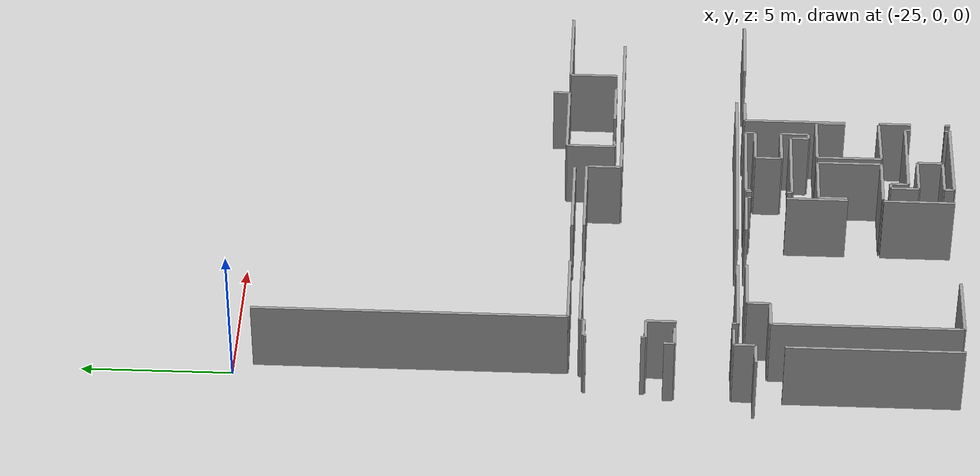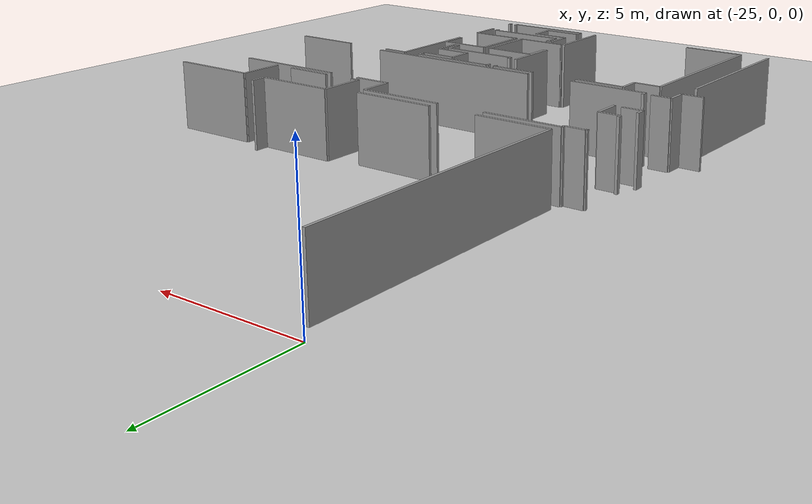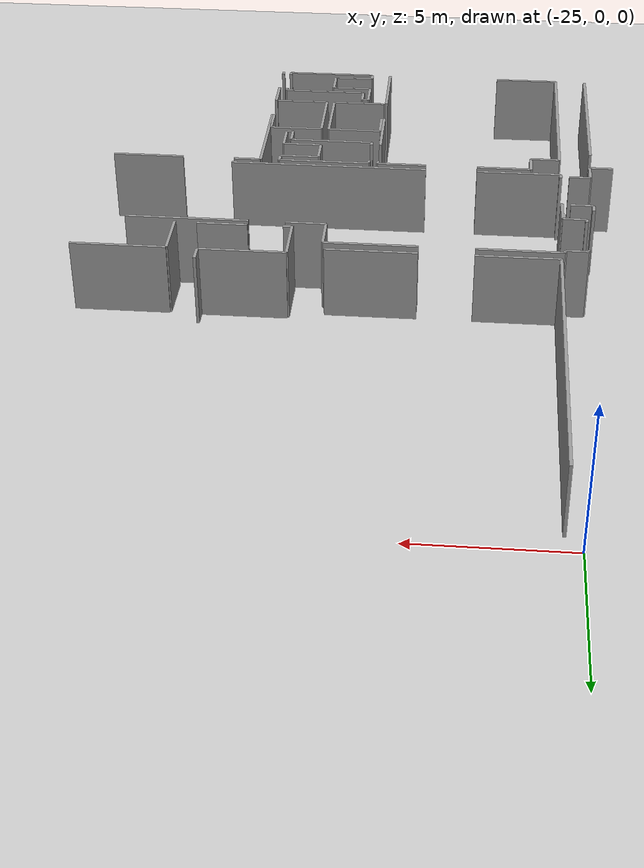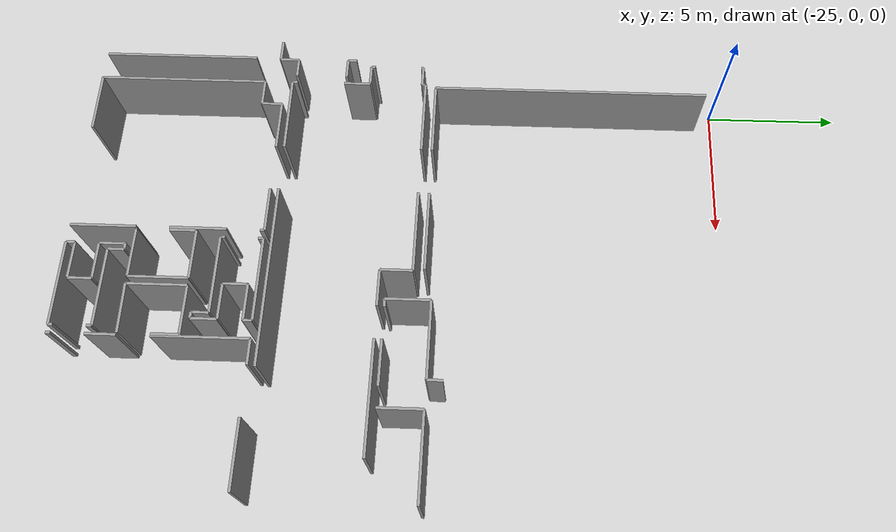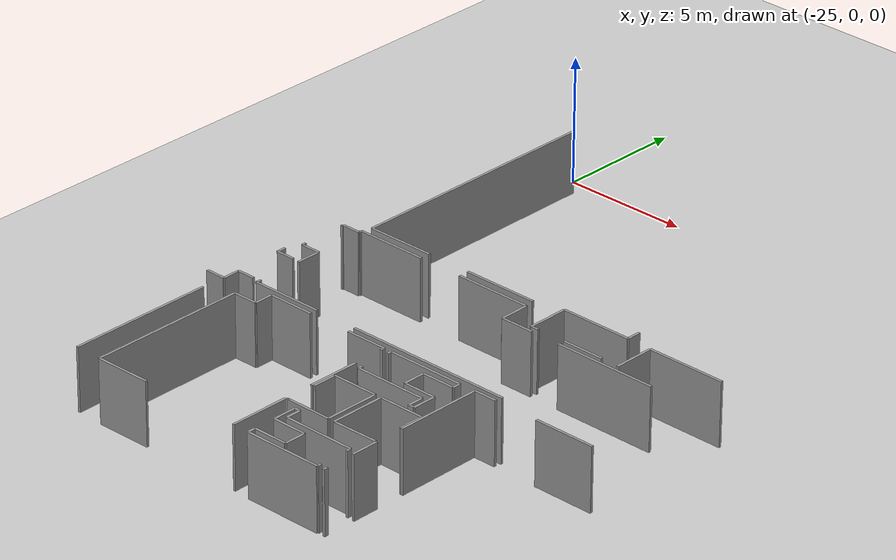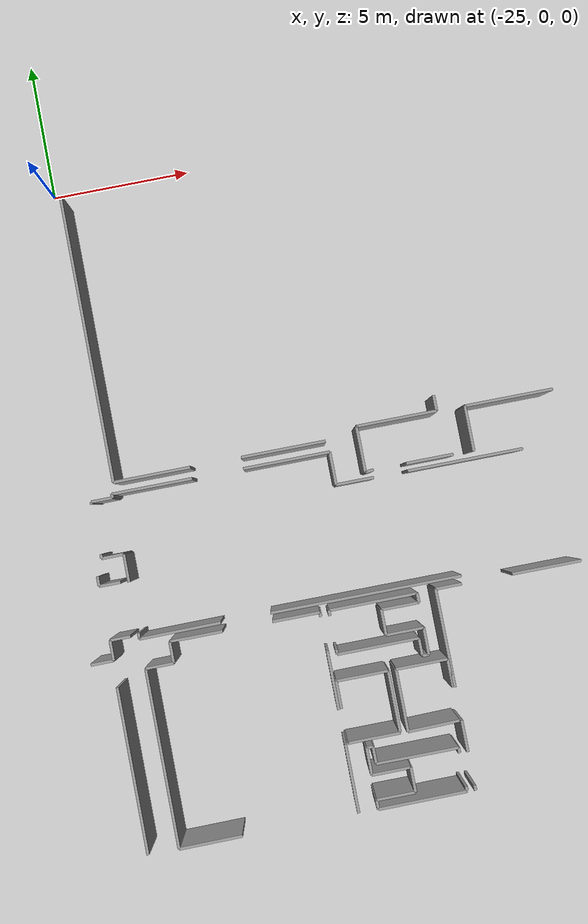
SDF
<sdf version="1.6">
 <world name="default">
  <model name="ground_plane">
   <static>1</static>
   <link name="link">
    <collision name="collision">
     <geometry><plane><normal>0 0 1</normal><size>100 100</size></plane></geometry>
     <surface><friction><ode><mu>100</mu><mu2>50</mu2></ode></friction></surface>
    </collision>
    <visual name="visual">
     <cast_shadows>0</cast_shadows>
     <geometry><plane><normal>0 0 1</normal><size>100 100</size></plane></geometry>
     <material>
      <script><uri>file://media/materials/scripts/gazebo.material</uri><name>Gazebo/Grey</name></script>
     </material>
    </visual>
   </link>
  </model>
  <model name="50057022">
   <static>1</static>
   <link name="Wall_275">
    <collision name="Wall_275_Collision">
     <geometry><box><size>0.340661095438 0.1 2.5</size></box></geometry>
     <pose>0.170330547719 0 1.25 0 0 0</pose>
    </collision>
    <visual name="Wall_275_Visual">
     <pose>0.170330547719 0 1.25 0 0 0</pose>
     <geometry><box><size>0.340661095438 0.1 2.5</size></box></geometry>
     <material>
      <script><uri>file://media/materials/scripts/gazebo.material</uri><name>Gazebo/Grey</name></script>
      <ambient>1 1 1 1</ambient>
     </material>
    </visual>
    <pose>30.9262737405 -37.9091925267 0 0 0 -1.57079632679</pose>
   </link>
   <link name="Wall_276">
    <collision name="Wall_276_Collision">
     <geometry><box><size>0.75368732685 0.1 2.5</size></box></geometry>
     <pose>0.376843663425 0 1.25 0 0 0</pose>
    </collision>
    <visual name="Wall_276_Visual">
     <pose>0.376843663425 0 1.25 0 0 0</pose>
     <geometry><box><size>0.75368732685 0.1 2.5</size></box></geometry>
     <material>
      <script><uri>file://media/materials/scripts/gazebo.material</uri><name>Gazebo/Grey</name></script>
      <ambient>1 1 1 1</ambient>
     </material>
    </visual>
    <pose>30.9262737405 -38.2498536222 0 0 0 0.0</pose>
   </link>
   <link name="Wall_277">
    <collision name="Wall_277_Collision">
     <geometry><box><size>0.723144423576 0.1 2.5</size></box></geometry>
     <pose>0.361572211788 0 1.25 0 0 0</pose>
    </collision>
    <visual name="Wall_277_Visual">
     <pose>0.361572211788 0 1.25 0 0 0</pose>
     <geometry><box><size>0.723144423576 0.1 2.5</size></box></geometry>
     <material>
      <script><uri>file://media/materials/scripts/gazebo.material</uri><name>Gazebo/Grey</name></script>
      <ambient>1 1 1 1</ambient>
     </material>
    </visual>
    <pose>31.6799610673 -40.1591019119 0 0 0 3.14159265359</pose>
   </link>
   <link name="Wall_278">
    <collision name="Wall_278_Collision">
     <geometry><box><size>0.703880849726 0.1 2.5</size></box></geometry>
     <pose>0.351940424863 0 1.25 0 0 0</pose>
    </collision>
    <visual name="Wall_278_Visual">
     <pose>0.351940424863 0 1.25 0 0 0</pose>
     <geometry><box><size>0.703880849726 0.1 2.5</size></box></geometry>
     <material>
      <script><uri>file://media/materials/scripts/gazebo.material</uri><name>Gazebo/Grey</name></script>
      <ambient>1 1 1 1</ambient>
     </material>
    </visual>
    <pose>30.9568166437 -40.1591019119 0 0 0 -1.57079632679</pose>
   </link>
   <link name="Wall_279">
    <collision name="Wall_279_Collision">
     <geometry><box><size>0.804507676281 0.1 2.5</size></box></geometry>
     <pose>0.40225383814 0 1.25 0 0 0</pose>
    </collision>
    <visual name="Wall_279_Visual">
     <pose>0.40225383814 0 1.25 0 0 0</pose>
     <geometry><box><size>0.804507676281 0.1 2.5</size></box></geometry>
     <material>
      <script><uri>file://media/materials/scripts/gazebo.material</uri><name>Gazebo/Grey</name></script>
      <ambient>1 1 1 1</ambient>
     </material>
    </visual>
    <pose>30.9568166437 -40.8629827616 0 0 0 3.14159265359</pose>
   </link>
   <link name="Wall_282">
    <collision name="Wall_282_Collision">
     <geometry><box><size>5.79922286688 0.1 2.5</size></box></geometry>
     <pose>2.89961143344 0 1.25 0 0 0</pose>
    </collision>
    <visual name="Wall_282_Visual">
     <pose>2.89961143344 0 1.25 0 0 0</pose>
     <geometry><box><size>5.79922286688 0.1 2.5</size></box></geometry>
     <material>
      <script><uri>file://media/materials/scripts/gazebo.material</uri><name>Gazebo/Grey</name></script>
      <ambient>1 1 1 1</ambient>
     </material>
    </visual>
    <pose>30.9065032305 -41.8015750506 0 0 0 -1.57079632679</pose>
   </link>
   <link name="Wall_309">
    <collision name="Wall_309_Collision">
     <geometry><box><size>6.2560990756 0.1 2.5</size></box></geometry>
     <pose>3.1280495378 0 1.25 0 0 0</pose>
    </collision>
    <visual name="Wall_309_Visual">
     <pose>3.1280495378 0 1.25 0 0 0</pose>
     <geometry><box><size>6.2560990756 0.1 2.5</size></box></geometry>
     <material>
      <script><uri>file://media/materials/scripts/gazebo.material</uri><name>Gazebo/Grey</name></script>
      <ambient>1 1 1 1</ambient>
     </material>
    </visual>
    <pose>31.9922337381 -47.6037128004 0 0 0 1.57079632679</pose>
   </link>
   <link name="Wall_310">
    <collision name="Wall_310_Collision">
     <geometry><box><size>0.989666106502 0.1 2.5</size></box></geometry>
     <pose>0.494833053251 0 1.25 0 0 0</pose>
    </collision>
    <visual name="Wall_310_Visual">
     <pose>0.494833053251 0 1.25 0 0 0</pose>
     <geometry><box><size>0.989666106502 0.1 2.5</size></box></geometry>
     <material>
      <script><uri>file://media/materials/scripts/gazebo.material</uri><name>Gazebo/Grey</name></script>
      <ambient>1 1 1 1</ambient>
     </material>
    </visual>
    <pose>31.9922337381 -41.3476137248 0 0 0 0.0</pose>
   </link>
   <link name="Wall_311">
    <collision name="Wall_311_Collision">
     <geometry><box><size>0.75786955012 0.1 2.5</size></box></geometry>
     <pose>0.37893477506 0 1.25 0 0 0</pose>
    </collision>
    <visual name="Wall_311_Visual">
     <pose>0.37893477506 0 1.25 0 0 0</pose>
     <geometry><box><size>0.75786955012 0.1 2.5</size></box></geometry>
     <material>
      <script><uri>file://media/materials/scripts/gazebo.material</uri><name>Gazebo/Grey</name></script>
      <ambient>1 1 1 1</ambient>
     </material>
    </visual>
    <pose>32.9818998446 -41.3476137248 0 0 0 1.57079632679</pose>
   </link>
   <link name="Wall_312">
    <collision name="Wall_312_Collision">
     <geometry><box><size>1.86552504645 0.1 2.5</size></box></geometry>
     <pose>0.932762523224 0 1.25 0 0 0</pose>
    </collision>
    <visual name="Wall_312_Visual">
     <pose>0.932762523224 0 1.25 0 0 0</pose>
     <geometry><box><size>1.86552504645 0.1 2.5</size></box></geometry>
     <material>
      <script><uri>file://media/materials/scripts/gazebo.material</uri><name>Gazebo/Grey</name></script>
      <ambient>1 1 1 1</ambient>
     </material>
    </visual>
    <pose>32.9818998446 -40.5897441747 0 0 0 0.0</pose>
   </link>
   <link name="Wall_313">
    <collision name="Wall_313_Collision">
     <geometry><box><size>1.67605765892 0.1 2.5</size></box></geometry>
     <pose>0.838028829459 0 1.25 0 0 0</pose>
    </collision>
    <visual name="Wall_313_Visual">
     <pose>0.838028829459 0 1.25 0 0 0</pose>
     <geometry><box><size>1.67605765892 0.1 2.5</size></box></geometry>
     <material>
      <script><uri>file://media/materials/scripts/gazebo.material</uri><name>Gazebo/Grey</name></script>
      <ambient>1 1 1 1</ambient>
     </material>
    </visual>
    <pose>36.6109290365 -40.5897441747 0 0 0 0.0</pose>
   </link>
   <link name="Wall_314">
    <collision name="Wall_314_Collision">
     <geometry><box><size>0.160318558679 0.1 2.5</size></box></geometry>
     <pose>0.0801592793396 0 1.25 0 0 0</pose>
    </collision>
    <visual name="Wall_314_Visual">
     <pose>0.0801592793396 0 1.25 0 0 0</pose>
     <geometry><box><size>0.160318558679 0.1 2.5</size></box></geometry>
     <material>
      <script><uri>file://media/materials/scripts/gazebo.material</uri><name>Gazebo/Grey</name></script>
      <ambient>1 1 1 1</ambient>
     </material>
    </visual>
    <pose>38.2869866955 -40.5897441747 0 0 0 -1.57079632679</pose>
   </link>
   <link name="Wall_315">
    <collision name="Wall_315_Collision">
     <geometry><box><size>2.05790731686 0.1 2.5</size></box></geometry>
     <pose>1.02895365843 0 1.25 0 0 0</pose>
    </collision>
    <visual name="Wall_315_Visual">
     <pose>1.02895365843 0 1.25 0 0 0</pose>
     <geometry><box><size>2.05790731686 0.1 2.5</size></box></geometry>
     <material>
      <script><uri>file://media/materials/scripts/gazebo.material</uri><name>Gazebo/Grey</name></script>
      <ambient>1 1 1 1</ambient>
     </material>
    </visual>
    <pose>38.2869866955 -41.9456716524 0 0 0 -1.57079632679</pose>
   </link>
   <link name="Wall_316">
    <collision name="Wall_316_Collision">
     <geometry><box><size>2.37930483845 0.1 2.5</size></box></geometry>
     <pose>1.18965241923 0 1.25 0 0 0</pose>
    </collision>
    <visual name="Wall_316_Visual">
     <pose>1.18965241923 0 1.25 0 0 0</pose>
     <geometry><box><size>2.37930483845 0.1 2.5</size></box></geometry>
     <material>
      <script><uri>file://media/materials/scripts/gazebo.material</uri><name>Gazebo/Grey</name></script>
      <ambient>1 1 1 1</ambient>
     </material>
    </visual>
    <pose>38.2869866955 -45.2057780583 0 0 0 -1.57079632679</pose>
   </link>
   <link name="Wall_317">
    <collision name="Wall_317_Collision">
     <geometry><box><size>2.22451385584 0.1 2.5</size></box></geometry>
     <pose>1.11225692792 0 1.25 0 0 0</pose>
    </collision>
    <visual name="Wall_317_Visual">
     <pose>1.11225692792 0 1.25 0 0 0</pose>
     <geometry><box><size>2.22451385584 0.1 2.5</size></box></geometry>
     <material>
      <script><uri>file://media/materials/scripts/gazebo.material</uri><name>Gazebo/Grey</name></script>
      <ambient>1 1 1 1</ambient>
     </material>
    </visual>
    <pose>34.2166695815 -47.5850828967 0 0 0 -3.13321773545</pose>
   </link>
   <link name="Wall_318">
    <collision name="Wall_318_Collision">
     <geometry><box><size>0.172485026373 0.1 2.5</size></box></geometry>
     <pose>0.0862425131867 0 1.25 0 0 0</pose>
    </collision>
    <visual name="Wall_318_Visual">
     <pose>0.0862425131867 0 1.25 0 0 0</pose>
     <geometry><box><size>0.172485026373 0.1 2.5</size></box></geometry>
     <material>
      <script><uri>file://media/materials/scripts/gazebo.material</uri><name>Gazebo/Grey</name></script>
      <ambient>1 1 1 1</ambient>
     </material>
    </visual>
    <pose>42.3879734467 -47.5937008114 0 0 0 1.57079632679</pose>
   </link>
   <link name="Wall_319">
    <collision name="Wall_319_Collision">
     <geometry><box><size>1.09003946498 0.1 2.5</size></box></geometry>
     <pose>0.54501973249 0 1.25 0 0 0</pose>
    </collision>
    <visual name="Wall_319_Visual">
     <pose>0.54501973249 0 1.25 0 0 0</pose>
     <geometry><box><size>1.09003946498 0.1 2.5</size></box></geometry>
     <material>
      <script><uri>file://media/materials/scripts/gazebo.material</uri><name>Gazebo/Grey</name></script>
      <ambient>1 1 1 1</ambient>
     </material>
    </visual>
    <pose>42.3879734467 -46.2579240458 0 0 0 1.57079632679</pose>
   </link>
   <link name="Wall_320">
    <collision name="Wall_320_Collision">
     <geometry><box><size>3.44019547458 0.1 2.5</size></box></geometry>
     <pose>1.72009773729 0 1.25 0 0 0</pose>
    </collision>
    <visual name="Wall_320_Visual">
     <pose>1.72009773729 0 1.25 0 0 0</pose>
     <geometry><box><size>3.44019547458 0.1 2.5</size></box></geometry>
     <material>
      <script><uri>file://media/materials/scripts/gazebo.material</uri><name>Gazebo/Grey</name></script>
      <ambient>1 1 1 1</ambient>
     </material>
    </visual>
    <pose>42.3879734467 -44.0021848948 0 0 0 1.57079632679</pose>
   </link>
   <link name="Wall_321">
    <collision name="Wall_321_Collision">
     <geometry><box><size>0.930734778608 0.1 2.5</size></box></geometry>
     <pose>0.465367389304 0 1.25 0 0 0</pose>
    </collision>
    <visual name="Wall_321_Visual">
     <pose>0.465367389304 0 1.25 0 0 0</pose>
     <geometry><box><size>0.930734778608 0.1 2.5</size></box></geometry>
     <material>
      <script><uri>file://media/materials/scripts/gazebo.material</uri><name>Gazebo/Grey</name></script>
      <ambient>1 1 1 1</ambient>
     </material>
    </visual>
    <pose>42.3879734467 -40.5619894202 0 0 0 0.0</pose>
   </link>
   <link name="Wall_322">
    <collision name="Wall_322_Collision">
     <geometry><box><size>2.45319078289 0.1 2.5</size></box></geometry>
     <pose>1.22659539144 0 1.25 0 0 0</pose>
    </collision>
    <visual name="Wall_322_Visual">
     <pose>1.22659539144 0 1.25 0 0 0</pose>
     <geometry><box><size>2.45319078289 0.1 2.5</size></box></geometry>
     <material>
      <script><uri>file://media/materials/scripts/gazebo.material</uri><name>Gazebo/Grey</name></script>
      <ambient>1 1 1 1</ambient>
     </material>
    </visual>
    <pose>45.1095869231 -40.5619894202 0 0 0 0.0</pose>
   </link>
   <link name="Wall_327">
    <collision name="Wall_327_Collision">
     <geometry><box><size>0.164374047911 0.1 2.5</size></box></geometry>
     <pose>0.0821870239553 0 1.25 0 0 0</pose>
    </collision>
    <visual name="Wall_327_Visual">
     <pose>0.0821870239553 0 1.25 0 0 0</pose>
     <geometry><box><size>0.164374047911 0.1 2.5</size></box></geometry>
     <material>
      <script><uri>file://media/materials/scripts/gazebo.material</uri><name>Gazebo/Grey</name></script>
      <ambient>1 1 1 1</ambient>
     </material>
    </visual>
    <pose>38.6069901426 -42.1251270509 0 0 0 1.57079632679</pose>
   </link>
   <link name="Wall_328">
    <collision name="Wall_328_Collision">
     <geometry><box><size>0.189087185414 0.1 2.5</size></box></geometry>
     <pose>0.0945435927072 0 1.25 0 0 0</pose>
    </collision>
    <visual name="Wall_328_Visual">
     <pose>0.0945435927072 0 1.25 0 0 0</pose>
     <geometry><box><size>0.189087185414 0.1 2.5</size></box></geometry>
     <material>
      <script><uri>file://media/materials/scripts/gazebo.material</uri><name>Gazebo/Grey</name></script>
      <ambient>1 1 1 1</ambient>
     </material>
    </visual>
    <pose>38.6069901426 -40.7761699453 0 0 0 1.57079632679</pose>
   </link>
   <link name="Wall_329">
    <collision name="Wall_329_Collision">
     <geometry><box><size>3.12386731453 0.1 2.5</size></box></geometry>
     <pose>1.56193365727 0 1.25 0 0 0</pose>
    </collision>
    <visual name="Wall_329_Visual">
     <pose>1.56193365727 0 1.25 0 0 0</pose>
     <geometry><box><size>3.12386731453 0.1 2.5</size></box></geometry>
     <material>
      <script><uri>file://media/materials/scripts/gazebo.material</uri><name>Gazebo/Grey</name></script>
      <ambient>1 1 1 1</ambient>
     </material>
    </visual>
    <pose>38.6069901426 -40.5870827599 0 0 0 0.0</pose>
   </link>
   <link name="Wall_330">
    <collision name="Wall_330_Collision">
     <geometry><box><size>0.321397521589 0.1 2.5</size></box></geometry>
     <pose>0.160698760795 0 1.25 0 0 0</pose>
    </collision>
    <visual name="Wall_330_Visual">
     <pose>0.160698760795 0 1.25 0 0 0</pose>
     <geometry><box><size>0.321397521589 0.1 2.5</size></box></geometry>
     <material>
      <script><uri>file://media/materials/scripts/gazebo.material</uri><name>Gazebo/Grey</name></script>
      <ambient>1 1 1 1</ambient>
     </material>
    </visual>
    <pose>41.7308574572 -40.5870827599 0 0 0 -1.57079632679</pose>
   </link>
   <link name="Wall_331">
    <collision name="Wall_331_Collision">
     <geometry><box><size>1.3357767656 0.1 2.5</size></box></geometry>
     <pose>0.667888382798 0 1.25 0 0 0</pose>
    </collision>
    <visual name="Wall_331_Visual">
     <pose>0.667888382798 0 1.25 0 0 0</pose>
     <geometry><box><size>1.3357767656 0.1 2.5</size></box></geometry>
     <material>
      <script><uri>file://media/materials/scripts/gazebo.material</uri><name>Gazebo/Grey</name></script>
      <ambient>1 1 1 1</ambient>
     </material>
    </visual>
    <pose>41.7308574572 -40.9084802815 0 0 0 3.14159265359</pose>
   </link>
   <link name="Wall_332">
    <collision name="Wall_332_Collision">
     <geometry><box><size>0.888405609755 0.1 2.5</size></box></geometry>
     <pose>0.444202804878 0 1.25 0 0 0</pose>
    </collision>
    <visual name="Wall_332_Visual">
     <pose>0.444202804878 0 1.25 0 0 0</pose>
     <geometry><box><size>0.888405609755 0.1 2.5</size></box></geometry>
     <material>
      <script><uri>file://media/materials/scripts/gazebo.material</uri><name>Gazebo/Grey</name></script>
      <ambient>1 1 1 1</ambient>
     </material>
    </visual>
    <pose>40.3950806916 -40.9084802815 0 0 0 -1.57079632679</pose>
   </link>
   <link name="Wall_333">
    <collision name="Wall_333_Collision">
     <geometry><box><size>1.32310336175 0.1 2.5</size></box></geometry>
     <pose>0.661551680874 0 1.25 0 0 0</pose>
    </collision>
    <visual name="Wall_333_Visual">
     <pose>0.661551680874 0 1.25 0 0 0</pose>
     <geometry><box><size>1.32310336175 0.1 2.5</size></box></geometry>
     <material>
      <script><uri>file://media/materials/scripts/gazebo.material</uri><name>Gazebo/Grey</name></script>
      <ambient>1 1 1 1</ambient>
     </material>
    </visual>
    <pose>40.3950806916 -41.7968858912 0 0 0 0.0</pose>
   </link>
   <link name="Wall_334">
    <collision name="Wall_334_Collision">
     <geometry><box><size>0.939352693225 0.1 2.5</size></box></geometry>
     <pose>0.469676346613 0 1.25 0 0 0</pose>
    </collision>
    <visual name="Wall_334_Visual">
     <pose>0.469676346613 0 1.25 0 0 0</pose>
     <geometry><box><size>0.939352693225 0.1 2.5</size></box></geometry>
     <material>
      <script><uri>file://media/materials/scripts/gazebo.material</uri><name>Gazebo/Grey</name></script>
      <ambient>1 1 1 1</ambient>
     </material>
    </visual>
    <pose>41.7181840533 -41.7968858912 0 0 0 -1.57079632679</pose>
   </link>
   <link name="Wall_335">
    <collision name="Wall_335_Collision">
     <geometry><box><size>0.228121269267 0.1 2.5</size></box></geometry>
     <pose>0.114060634633 0 1.25 0 0 0</pose>
    </collision>
    <visual name="Wall_335_Visual">
     <pose>0.114060634633 0 1.25 0 0 0</pose>
     <geometry><box><size>0.228121269267 0.1 2.5</size></box></geometry>
     <material>
      <script><uri>file://media/materials/scripts/gazebo.material</uri><name>Gazebo/Grey</name></script>
      <ambient>1 1 1 1</ambient>
     </material>
    </visual>
    <pose>41.7181840533 -42.7362385844 0 0 0 3.14159265359</pose>
   </link>
   <link name="Wall_336">
    <collision name="Wall_336_Collision">
     <geometry><box><size>0.617194767405 0.1 2.5</size></box></geometry>
     <pose>0.308597383703 0 1.25 0 0 0</pose>
    </collision>
    <visual name="Wall_336_Visual">
     <pose>0.308597383703 0 1.25 0 0 0</pose>
     <geometry><box><size>0.617194767405 0.1 2.5</size></box></geometry>
     <material>
      <script><uri>file://media/materials/scripts/gazebo.material</uri><name>Gazebo/Grey</name></script>
      <ambient>1 1 1 1</ambient>
     </material>
    </visual>
    <pose>41.490062784 -42.7362385844 0 0 0 1.57079632679</pose>
   </link>
   <link name="Wall_337">
    <collision name="Wall_337_Collision">
     <geometry><box><size>2.88307905917 0.1 2.5</size></box></geometry>
     <pose>1.44153952958 0 1.25 0 0 0</pose>
    </collision>
    <visual name="Wall_337_Visual">
     <pose>1.44153952958 0 1.25 0 0 0</pose>
     <geometry><box><size>2.88307905917 0.1 2.5</size></box></geometry>
     <material>
      <script><uri>file://media/materials/scripts/gazebo.material</uri><name>Gazebo/Grey</name></script>
      <ambient>1 1 1 1</ambient>
     </material>
    </visual>
    <pose>41.490062784 -42.119043817 0 0 0 -3.13948267386</pose>
   </link>
   <link name="Wall_338">
    <collision name="Wall_338_Collision">
     <geometry><box><size>1.83954456856 0.1 2.5</size></box></geometry>
     <pose>0.91977228428 0 1.25 0 0 0</pose>
    </collision>
    <visual name="Wall_338_Visual">
     <pose>0.91977228428 0 1.25 0 0 0</pose>
     <geometry><box><size>1.83954456856 0.1 2.5</size></box></geometry>
     <material>
      <script><uri>file://media/materials/scripts/gazebo.material</uri><name>Gazebo/Grey</name></script>
      <ambient>1 1 1 1</ambient>
     </material>
    </visual>
    <pose>38.3835580328 -45.1806847187 0 0 0 0.0</pose>
   </link>
   <link name="Wall_339">
    <collision name="Wall_339_Collision">
     <geometry><box><size>2.16271636669 0.1 2.5</size></box></geometry>
     <pose>1.08135818334 0 1.25 0 0 0</pose>
    </collision>
    <visual name="Wall_339_Visual">
     <pose>1.08135818334 0 1.25 0 0 0</pose>
     <geometry><box><size>2.16271636669 0.1 2.5</size></box></geometry>
     <material>
      <script><uri>file://media/materials/scripts/gazebo.material</uri><name>Gazebo/Grey</name></script>
      <ambient>1 1 1 1</ambient>
     </material>
    </visual>
    <pose>40.2231026013 -45.1806847187 0 0 0 1.57079632679</pose>
   </link>
   <link name="Wall_340">
    <collision name="Wall_340_Collision">
     <geometry><box><size>1.83954456856 0.1 2.5</size></box></geometry>
     <pose>0.91977228428 0 1.25 0 0 0</pose>
    </collision>
    <visual name="Wall_340_Visual">
     <pose>0.91977228428 0 1.25 0 0 0</pose>
     <geometry><box><size>1.83954456856 0.1 2.5</size></box></geometry>
     <material>
      <script><uri>file://media/materials/scripts/gazebo.material</uri><name>Gazebo/Grey</name></script>
      <ambient>1 1 1 1</ambient>
     </material>
    </visual>
    <pose>40.2231026013 -43.017968352 0 0 0 3.14159265359</pose>
   </link>
   <link name="Wall_341">
    <collision name="Wall_341_Collision">
     <geometry><box><size>0.965333171114 0.1 2.5</size></box></geometry>
     <pose>0.482666585557 0 1.25 0 0 0</pose>
    </collision>
    <visual name="Wall_341_Visual">
     <pose>0.482666585557 0 1.25 0 0 0</pose>
     <geometry><box><size>0.965333171114 0.1 2.5</size></box></geometry>
     <material>
      <script><uri>file://media/materials/scripts/gazebo.material</uri><name>Gazebo/Grey</name></script>
      <ambient>1 1 1 1</ambient>
     </material>
    </visual>
    <pose>38.3835580328 -43.017968352 0 0 0 -1.57079632679</pose>
   </link>
   <link name="Wall_342">
    <collision name="Wall_342_Collision">
     <geometry><box><size>0.0315567755819 0.1 2.5</size></box></geometry>
     <pose>0.015778387791 0 1.25 0 0 0</pose>
    </collision>
    <visual name="Wall_342_Visual">
     <pose>0.015778387791 0 1.25 0 0 0</pose>
     <geometry><box><size>0.0315567755819 0.1 2.5</size></box></geometry>
     <material>
      <script><uri>file://media/materials/scripts/gazebo.material</uri><name>Gazebo/Grey</name></script>
      <ambient>1 1 1 1</ambient>
     </material>
    </visual>
    <pose>38.3835580328 -45.1491279431 0 0 0 -1.57079632679</pose>
   </link>
   <link name="Wall_343">
    <collision name="Wall_343_Collision">
     <geometry><box><size>2.17500956842 0.1 2.5</size></box></geometry>
     <pose>1.08750478421 0 1.25 0 0 0</pose>
    </collision>
    <visual name="Wall_343_Visual">
     <pose>1.08750478421 0 1.25 0 0 0</pose>
     <geometry><box><size>2.17500956842 0.1 2.5</size></box></geometry>
     <material>
      <script><uri>file://media/materials/scripts/gazebo.material</uri><name>Gazebo/Grey</name></script>
      <ambient>1 1 1 1</ambient>
     </material>
    </visual>
    <pose>40.4964679223 -45.1889224312 0 0 0 1.57079632679</pose>
   </link>
   <link name="Wall_344">
    <collision name="Wall_344_Collision">
     <geometry><box><size>1.82699789875 0.1 2.5</size></box></geometry>
     <pose>0.913498949375 0 1.25 0 0 0</pose>
    </collision>
    <visual name="Wall_344_Visual">
     <pose>0.913498949375 0 1.25 0 0 0</pose>
     <geometry><box><size>1.82699789875 0.1 2.5</size></box></geometry>
     <material>
      <script><uri>file://media/materials/scripts/gazebo.material</uri><name>Gazebo/Grey</name></script>
      <ambient>1 1 1 1</ambient>
     </material>
    </visual>
    <pose>40.4964679223 -43.0139128627 0 0 0 0.0</pose>
   </link>
   <link name="Wall_345">
    <collision name="Wall_345_Collision">
     <geometry><box><size>0.985990819386 0.1 2.5</size></box></geometry>
     <pose>0.492995409693 0 1.25 0 0 0</pose>
    </collision>
    <visual name="Wall_345_Visual">
     <pose>0.492995409693 0 1.25 0 0 0</pose>
     <geometry><box><size>0.985990819386 0.1 2.5</size></box></geometry>
     <material>
      <script><uri>file://media/materials/scripts/gazebo.material</uri><name>Gazebo/Grey</name></script>
      <ambient>1 1 1 1</ambient>
     </material>
    </visual>
    <pose>42.3234658211 -43.0139128627 0 0 0 -1.57079632679</pose>
   </link>
   <link name="Wall_346">
    <collision name="Wall_346_Collision">
     <geometry><box><size>1.82726605044 0.1 2.5</size></box></geometry>
     <pose>0.913633025221 0 1.25 0 0 0</pose>
    </collision>
    <visual name="Wall_346_Visual">
     <pose>0.913633025221 0 1.25 0 0 0</pose>
     <geometry><box><size>1.82726605044 0.1 2.5</size></box></geometry>
     <material>
      <script><uri>file://media/materials/scripts/gazebo.material</uri><name>Gazebo/Grey</name></script>
      <ambient>1 1 1 1</ambient>
     </material>
    </visual>
    <pose>42.3234658211 -45.1576191237 0 0 0 -3.12446058963</pose>
   </link>
   <link name="Wall_347">
    <collision name="Wall_347_Collision">
     <geometry><box><size>0.323171798128 0.1 2.5</size></box></geometry>
     <pose>0.161585899064 0 1.25 0 0 0</pose>
    </collision>
    <visual name="Wall_347_Visual">
     <pose>0.161585899064 0 1.25 0 0 0</pose>
     <geometry><box><size>0.323171798128 0.1 2.5</size></box></geometry>
     <material>
      <script><uri>file://media/materials/scripts/gazebo.material</uri><name>Gazebo/Grey</name></script>
      <ambient>1 1 1 1</ambient>
     </material>
    </visual>
    <pose>38.9760396627 -47.5877443115 0 0 0 1.57079632679</pose>
   </link>
   <link name="Wall_348">
    <collision name="Wall_348_Collision">
     <geometry><box><size>1.37126229637 0.1 2.5</size></box></geometry>
     <pose>0.685631148185 0 1.25 0 0 0</pose>
    </collision>
    <visual name="Wall_348_Visual">
     <pose>0.685631148185 0 1.25 0 0 0</pose>
     <geometry><box><size>1.37126229637 0.1 2.5</size></box></geometry>
     <material>
      <script><uri>file://media/materials/scripts/gazebo.material</uri><name>Gazebo/Grey</name></script>
      <ambient>1 1 1 1</ambient>
     </material>
    </visual>
    <pose>38.9760396627 -47.2645725134 0 0 0 0.0</pose>
   </link>
   <link name="Wall_349">
    <collision name="Wall_349_Collision">
     <geometry><box><size>0.861791461674 0.1 2.5</size></box></geometry>
     <pose>0.430895730837 0 1.25 0 0 0</pose>
    </collision>
    <visual name="Wall_349_Visual">
     <pose>0.430895730837 0 1.25 0 0 0</pose>
     <geometry><box><size>0.861791461674 0.1 2.5</size></box></geometry>
     <material>
      <script><uri>file://media/materials/scripts/gazebo.material</uri><name>Gazebo/Grey</name></script>
      <ambient>1 1 1 1</ambient>
     </material>
    </visual>
    <pose>40.3473019591 -47.2645725134 0 0 0 1.57079632679</pose>
   </link>
   <link name="Wall_350">
    <collision name="Wall_350_Collision">
     <geometry><box><size>1.3670800731 0.1 2.5</size></box></geometry>
     <pose>0.68354003655 0 1.25 0 0 0</pose>
    </collision>
    <visual name="Wall_350_Visual">
     <pose>0.68354003655 0 1.25 0 0 0</pose>
     <geometry><box><size>1.3670800731 0.1 2.5</size></box></geometry>
     <material>
      <script><uri>file://media/materials/scripts/gazebo.material</uri><name>Gazebo/Grey</name></script>
      <ambient>1 1 1 1</ambient>
     </material>
    </visual>
    <pose>40.3473019591 -46.4027810517 0 0 0 3.14159265359</pose>
   </link>
   <link name="Wall_351">
    <collision name="Wall_351_Collision">
     <geometry><box><size>0.938719023033 0.1 2.5</size></box></geometry>
     <pose>0.469359511516 0 1.25 0 0 0</pose>
    </collision>
    <visual name="Wall_351_Visual">
     <pose>0.469359511516 0 1.25 0 0 0</pose>
     <geometry><box><size>0.938719023033 0.1 2.5</size></box></geometry>
     <material>
      <script><uri>file://media/materials/scripts/gazebo.material</uri><name>Gazebo/Grey</name></script>
      <ambient>1 1 1 1</ambient>
     </material>
    </visual>
    <pose>38.980221886 -46.4027810517 0 0 0 1.57079632679</pose>
   </link>
   <link name="Wall_352">
    <collision name="Wall_352_Collision">
     <geometry><box><size>0.223939045997 0.1 2.5</size></box></geometry>
     <pose>0.111969522998 0 1.25 0 0 0</pose>
    </collision>
    <visual name="Wall_352_Visual">
     <pose>0.111969522998 0 1.25 0 0 0</pose>
     <geometry><box><size>0.223939045997 0.1 2.5</size></box></geometry>
     <material>
      <script><uri>file://media/materials/scripts/gazebo.material</uri><name>Gazebo/Grey</name></script>
      <ambient>1 1 1 1</ambient>
     </material>
    </visual>
    <pose>38.980221886 -45.4640620287 0 0 0 0.0</pose>
   </link>
   <link name="Wall_353">
    <collision name="Wall_353_Collision">
     <geometry><box><size>0.592228161824 0.1 2.5</size></box></geometry>
     <pose>0.296114080912 0 1.25 0 0 0</pose>
    </collision>
    <visual name="Wall_353_Visual">
     <pose>0.296114080912 0 1.25 0 0 0</pose>
     <geometry><box><size>0.592228161824 0.1 2.5</size></box></geometry>
     <material>
      <script><uri>file://media/materials/scripts/gazebo.material</uri><name>Gazebo/Grey</name></script>
      <ambient>1 1 1 1</ambient>
     </material>
    </visual>
    <pose>39.204160932 -45.4640620287 0 0 0 -1.57079632679</pose>
   </link>
   <link name="Wall_354">
    <collision name="Wall_354_Collision">
     <geometry><box><size>2.89207075815 0.1 2.5</size></box></geometry>
     <pose>1.44603537907 0 1.25 0 0 0</pose>
    </collision>
    <visual name="Wall_354_Visual">
     <pose>1.44603537907 0 1.25 0 0 0</pose>
     <geometry><box><size>2.89207075815 0.1 2.5</size></box></geometry>
     <material>
      <script><uri>file://media/materials/scripts/gazebo.material</uri><name>Gazebo/Grey</name></script>
      <ambient>1 1 1 1</ambient>
     </material>
    </visual>
    <pose>39.204160932 -46.0562901905 0 0 0 0.0</pose>
   </link>
   <link name="Wall_355">
    <collision name="Wall_355_Collision">
     <geometry><box><size>0.189087185414 0.1 2.5</size></box></geometry>
     <pose>0.0945435927072 0 1.25 0 0 0</pose>
    </collision>
    <visual name="Wall_355_Visual">
     <pose>0.0945435927072 0 1.25 0 0 0</pose>
     <geometry><box><size>0.189087185414 0.1 2.5</size></box></geometry>
     <material>
      <script><uri>file://media/materials/scripts/gazebo.material</uri><name>Gazebo/Grey</name></script>
      <ambient>1 1 1 1</ambient>
     </material>
    </visual>
    <pose>42.0962316901 -46.0562901905 0 0 0 -1.57079632679</pose>
   </link>
   <link name="Wall_356">
    <collision name="Wall_356_Collision">
     <geometry><box><size>0.15943142041 0.1 2.5</size></box></geometry>
     <pose>0.0797157102049 0 1.25 0 0 0</pose>
    </collision>
    <visual name="Wall_356_Visual">
     <pose>0.0797157102049 0 1.25 0 0 0</pose>
     <geometry><box><size>0.15943142041 0.1 2.5</size></box></geometry>
     <material>
      <script><uri>file://media/materials/scripts/gazebo.material</uri><name>Gazebo/Grey</name></script>
      <ambient>1 1 1 1</ambient>
     </material>
    </visual>
    <pose>42.0962316901 -47.4087958492 0 0 0 -1.57079632679</pose>
   </link>
   <link name="Wall_357">
    <collision name="Wall_357_Collision">
     <geometry><box><size>3.12025306712 0.1 2.5</size></box></geometry>
     <pose>1.56012653356 0 1.25 0 0 0</pose>
    </collision>
    <visual name="Wall_357_Visual">
     <pose>1.56012653356 0 1.25 0 0 0</pose>
     <geometry><box><size>3.12025306712 0.1 2.5</size></box></geometry>
     <material>
      <script><uri>file://media/materials/scripts/gazebo.material</uri><name>Gazebo/Grey</name></script>
      <ambient>1 1 1 1</ambient>
     </material>
    </visual>
    <pose>42.0962316901 -47.5682272696 0 0 0 -3.13533765799</pose>
   </link>
   <link name="Wall_364">
    <collision name="Wall_364_Collision">
     <geometry><box><size>0.202901195609 0.1 2.5</size></box></geometry>
     <pose>0.101450597804 0 1.25 0 0 0</pose>
    </collision>
    <visual name="Wall_364_Visual">
     <pose>0.101450597804 0 1.25 0 0 0</pose>
     <geometry><box><size>0.202901195609 0.1 2.5</size></box></geometry>
     <material>
      <script><uri>file://media/materials/scripts/gazebo.material</uri><name>Gazebo/Grey</name></script>
      <ambient>1 1 1 1</ambient>
     </material>
    </visual>
    <pose>31.9698018133 -40.3004103648 0 0 0 1.57079632679</pose>
   </link>
   <link name="Wall_365">
    <collision name="Wall_365_Collision">
     <geometry><box><size>0.988525500156 0.1 2.5</size></box></geometry>
     <pose>0.494262750078 0 1.25 0 0 0</pose>
    </collision>
    <visual name="Wall_365_Visual">
     <pose>0.494262750078 0 1.25 0 0 0</pose>
     <geometry><box><size>0.988525500156 0.1 2.5</size></box></geometry>
     <material>
      <script><uri>file://media/materials/scripts/gazebo.material</uri><name>Gazebo/Grey</name></script>
      <ambient>1 1 1 1</ambient>
     </material>
    </visual>
    <pose>31.9698018133 -38.3059968012 0 0 0 1.57079632679</pose>
   </link>
   <link name="Wall_366">
    <collision name="Wall_366_Collision">
     <geometry><box><size>0.78372329397 0.1 2.5</size></box></geometry>
     <pose>0.391861646985 0 1.25 0 0 0</pose>
    </collision>
    <visual name="Wall_366_Visual">
     <pose>0.391861646985 0 1.25 0 0 0</pose>
     <geometry><box><size>0.78372329397 0.1 2.5</size></box></geometry>
     <material>
      <script><uri>file://media/materials/scripts/gazebo.material</uri><name>Gazebo/Grey</name></script>
      <ambient>1 1 1 1</ambient>
     </material>
    </visual>
    <pose>31.9698018133 -37.3174713011 0 0 0 3.14159265359</pose>
   </link>
   <link name="Wall_367">
    <collision name="Wall_367_Collision">
     <geometry><box><size>0.152080846178 0.1 2.5</size></box></geometry>
     <pose>0.0760404230889 0 1.25 0 0 0</pose>
    </collision>
    <visual name="Wall_367_Visual">
     <pose>0.0760404230889 0 1.25 0 0 0</pose>
     <geometry><box><size>0.152080846178 0.1 2.5</size></box></geometry>
     <material>
      <script><uri>file://media/materials/scripts/gazebo.material</uri><name>Gazebo/Grey</name></script>
      <ambient>1 1 1 1</ambient>
     </material>
    </visual>
    <pose>31.1860785193 -37.3174713011 0 0 0 1.57079632679</pose>
   </link>
   <link name="Wall_368">
    <collision name="Wall_368_Collision">
     <geometry><box><size>0.0869395503983 0.1 2.5</size></box></geometry>
     <pose>0.0434697751992 0 1.25 0 0 0</pose>
    </collision>
    <visual name="Wall_368_Visual">
     <pose>0.0434697751992 0 1.25 0 0 0</pose>
     <geometry><box><size>0.0869395503983 0.1 2.5</size></box></geometry>
     <material>
      <script><uri>file://media/materials/scripts/gazebo.material</uri><name>Gazebo/Grey</name></script>
      <ambient>1 1 1 1</ambient>
     </material>
    </visual>
    <pose>31.1860785193 -35.4021397775 0 0 0 1.57079632679</pose>
   </link>
   <link name="Wall_369">
    <collision name="Wall_369_Collision">
     <geometry><box><size>0.754701199157 0.1 2.5</size></box></geometry>
     <pose>0.377350599579 0 1.25 0 0 0</pose>
    </collision>
    <visual name="Wall_369_Visual">
     <pose>0.377350599579 0 1.25 0 0 0</pose>
     <geometry><box><size>0.754701199157 0.1 2.5</size></box></geometry>
     <material>
      <script><uri>file://media/materials/scripts/gazebo.material</uri><name>Gazebo/Grey</name></script>
      <ambient>1 1 1 1</ambient>
     </material>
    </visual>
    <pose>31.1860785193 -35.3152002271 0 0 0 0.0</pose>
   </link>
   <link name="Wall_370">
    <collision name="Wall_370_Collision">
     <geometry><box><size>0.130409325597 0.1 2.5</size></box></geometry>
     <pose>0.0652046627987 0 1.25 0 0 0</pose>
    </collision>
    <visual name="Wall_370_Visual">
     <pose>0.0652046627987 0 1.25 0 0 0</pose>
     <geometry><box><size>0.130409325597 0.1 2.5</size></box></geometry>
     <material>
      <script><uri>file://media/materials/scripts/gazebo.material</uri><name>Gazebo/Grey</name></script>
      <ambient>1 1 1 1</ambient>
     </material>
    </visual>
    <pose>31.9407797185 -35.3152002271 0 0 0 1.57079632679</pose>
   </link>
   <link name="Wall_371">
    <collision name="Wall_371_Collision">
     <geometry><box><size>2.85759909968 0.1 2.5</size></box></geometry>
     <pose>1.42879954984 0 1.25 0 0 0</pose>
    </collision>
    <visual name="Wall_371_Visual">
     <pose>1.42879954984 0 1.25 0 0 0</pose>
     <geometry><box><size>2.85759909968 0.1 2.5</size></box></geometry>
     <material>
      <script><uri>file://media/materials/scripts/gazebo.material</uri><name>Gazebo/Grey</name></script>
      <ambient>1 1 1 1</ambient>
     </material>
    </visual>
    <pose>31.9407797185 -35.1847909015 0 0 0 0.0</pose>
   </link>
   <link name="Wall_372">
    <collision name="Wall_372_Collision">
     <geometry><box><size>3.08179161376 0.1 2.5</size></box></geometry>
     <pose>1.54089580688 0 1.25 0 0 0</pose>
    </collision>
    <visual name="Wall_372_Visual">
     <pose>1.54089580688 0 1.25 0 0 0</pose>
     <geometry><box><size>3.08179161376 0.1 2.5</size></box></geometry>
     <material>
      <script><uri>file://media/materials/scripts/gazebo.material</uri><name>Gazebo/Grey</name></script>
      <ambient>1 1 1 1</ambient>
     </material>
    </visual>
    <pose>36.6081408877 -35.1847909015 0 0 0 0.0</pose>
   </link>
   <link name="Wall_373">
    <collision name="Wall_373_Collision">
     <geometry><box><size>1.16950170711 0.1 2.5</size></box></geometry>
     <pose>0.584750853554 0 1.25 0 0 0</pose>
    </collision>
    <visual name="Wall_373_Visual">
     <pose>0.584750853554 0 1.25 0 0 0</pose>
     <geometry><box><size>1.16950170711 0.1 2.5</size></box></geometry>
     <material>
      <script><uri>file://media/materials/scripts/gazebo.material</uri><name>Gazebo/Grey</name></script>
      <ambient>1 1 1 1</ambient>
     </material>
    </visual>
    <pose>39.6899325015 -35.1847909015 0 0 0 -1.57079632679</pose>
   </link>
   <link name="Wall_374">
    <collision name="Wall_374_Collision">
     <geometry><box><size>1.3433808079 0.1 2.5</size></box></geometry>
     <pose>0.671690403952 0 1.25 0 0 0</pose>
    </collision>
    <visual name="Wall_374_Visual">
     <pose>0.671690403952 0 1.25 0 0 0</pose>
     <geometry><box><size>1.3433808079 0.1 2.5</size></box></geometry>
     <material>
      <script><uri>file://media/materials/scripts/gazebo.material</uri><name>Gazebo/Grey</name></script>
      <ambient>1 1 1 1</ambient>
     </material>
    </visual>
    <pose>39.6899325015 -36.3542926086 0 0 0 0.0</pose>
   </link>
   <link name="Wall_375">
    <collision name="Wall_375_Collision">
     <geometry><box><size>4.10428183622 0.1 2.5</size></box></geometry>
     <pose>2.05214091811 0 1.25 0 0 0</pose>
    </collision>
    <visual name="Wall_375_Visual">
     <pose>2.05214091811 0 1.25 0 0 0</pose>
     <geometry><box><size>4.10428183622 0.1 2.5</size></box></geometry>
     <material>
      <script><uri>file://media/materials/scripts/gazebo.material</uri><name>Gazebo/Grey</name></script>
      <ambient>1 1 1 1</ambient>
     </material>
    </visual>
    <pose>42.2417223663 -36.3542926086 0 0 0 0.0</pose>
   </link>
   <link name="Wall_383">
    <collision name="Wall_383_Collision">
     <geometry><box><size>6.76050054876 0.1 2.5</size></box></geometry>
     <pose>3.38025027438 0 1.25 0 0 0</pose>
    </collision>
    <visual name="Wall_383_Visual">
     <pose>3.38025027438 0 1.25 0 0 0</pose>
     <geometry><box><size>6.76050054876 0.1 2.5</size></box></geometry>
     <material>
      <script><uri>file://media/materials/scripts/gazebo.material</uri><name>Gazebo/Grey</name></script>
      <ambient>1 1 1 1</ambient>
     </material>
    </visual>
    <pose>43.360530458 -40.2873567589 0 0 0 3.14159265359</pose>
   </link>
   <link name="Wall_384">
    <collision name="Wall_384_Collision">
     <geometry><box><size>2.87309030642 0.1 2.5</size></box></geometry>
     <pose>1.43654515321 0 1.25 0 0 0</pose>
    </collision>
    <visual name="Wall_384_Visual">
     <pose>1.43654515321 0 1.25 0 0 0</pose>
     <geometry><box><size>2.87309030642 0.1 2.5</size></box></geometry>
     <material>
      <script><uri>file://media/materials/scripts/gazebo.material</uri><name>Gazebo/Grey</name></script>
      <ambient>1 1 1 1</ambient>
     </material>
    </visual>
    <pose>34.8428624657 -40.2873567589 0 0 0 -3.13704923536</pose>
   </link>
   <link name="Wall_385">
    <collision name="Wall_385_Collision">
     <geometry><box><size>1.63829091545 0.1 2.5</size></box></geometry>
     <pose>0.819145457725 0 1.25 0 0 0</pose>
    </collision>
    <visual name="Wall_385_Visual">
     <pose>0.819145457725 0 1.25 0 0 0</pose>
     <geometry><box><size>1.63829091545 0.1 2.5</size></box></geometry>
     <material>
      <script><uri>file://media/materials/scripts/gazebo.material</uri><name>Gazebo/Grey</name></script>
      <ambient>1 1 1 1</ambient>
     </material>
    </visual>
    <pose>40.7793382962 -36.1198346374 0 0 0 1.57079632679</pose>
   </link>
   <link name="Wall_386">
    <collision name="Wall_386_Collision">
     <geometry><box><size>2.86697741853 0.1 2.5</size></box></geometry>
     <pose>1.43348870926 0 1.25 0 0 0</pose>
    </collision>
    <visual name="Wall_386_Visual">
     <pose>1.43348870926 0 1.25 0 0 0</pose>
     <geometry><box><size>2.86697741853 0.1 2.5</size></box></geometry>
     <material>
      <script><uri>file://media/materials/scripts/gazebo.material</uri><name>Gazebo/Grey</name></script>
      <ambient>1 1 1 1</ambient>
     </material>
    </visual>
    <pose>40.7793382962 -34.481543722 0 0 0 0.0</pose>
   </link>
   <link name="Wall_387">
    <collision name="Wall_387_Collision">
     <geometry><box><size>0.554461418357 0.1 2.5</size></box></geometry>
     <pose>0.277230709178 0 1.25 0 0 0</pose>
    </collision>
    <visual name="Wall_387_Visual">
     <pose>0.277230709178 0 1.25 0 0 0</pose>
     <geometry><box><size>0.554461418357 0.1 2.5</size></box></geometry>
     <material>
      <script><uri>file://media/materials/scripts/gazebo.material</uri><name>Gazebo/Grey</name></script>
      <ambient>1 1 1 1</ambient>
     </material>
    </visual>
    <pose>43.6463157148 -34.481543722 0 0 0 1.57079632679</pose>
   </link>
   <link name="Wall_390">
    <collision name="Wall_390_Collision">
     <geometry><box><size>1.67605765892 0.1 2.5</size></box></geometry>
     <pose>0.838028829459 0 1.25 0 0 0</pose>
    </collision>
    <visual name="Wall_390_Visual">
     <pose>0.838028829459 0 1.25 0 0 0</pose>
     <geometry><box><size>1.67605765892 0.1 2.5</size></box></geometry>
     <material>
      <script><uri>file://media/materials/scripts/gazebo.material</uri><name>Gazebo/Grey</name></script>
      <ambient>1 1 1 1</ambient>
     </material>
    </visual>
    <pose>43.917273089 -36.0882778618 0 0 0 3.14159265359</pose>
   </link>
   <link name="Wall_391">
    <collision name="Wall_391_Collision">
     <geometry><box><size>0.297475781733 0.1 2.5</size></box></geometry>
     <pose>0.148737890866 0 1.25 0 0 0</pose>
    </collision>
    <visual name="Wall_391_Visual">
     <pose>0.148737890866 0 1.25 0 0 0</pose>
     <geometry><box><size>0.297475781733 0.1 2.5</size></box></geometry>
     <material>
      <script><uri>file://media/materials/scripts/gazebo.material</uri><name>Gazebo/Grey</name></script>
      <ambient>1 1 1 1</ambient>
     </material>
    </visual>
    <pose>41.0751355421 -36.0882778618 0 0 0 -3.03531084557</pose>
   </link>
   <link name="Wall_392">
    <collision name="Wall_392_Collision">
     <geometry><box><size>1.61585899064 0.1 2.5</size></box></geometry>
     <pose>0.80792949532 0 1.25 0 0 0</pose>
    </collision>
    <visual name="Wall_392_Visual">
     <pose>0.80792949532 0 1.25 0 0 0</pose>
     <geometry><box><size>1.61585899064 0.1 2.5</size></box></geometry>
     <material>
      <script><uri>file://media/materials/scripts/gazebo.material</uri><name>Gazebo/Grey</name></script>
      <ambient>1 1 1 1</ambient>
     </material>
    </visual>
    <pose>44.6504295017 -36.1194544353 0 0 0 1.57079632679</pose>
   </link>
   <link name="Wall_393">
    <collision name="Wall_393_Collision">
     <geometry><box><size>3.14477843088 0.1 2.5</size></box></geometry>
     <pose>1.57238921544 0 1.25 0 0 0</pose>
    </collision>
    <visual name="Wall_393_Visual">
     <pose>1.57238921544 0 1.25 0 0 0</pose>
     <geometry><box><size>3.14477843088 0.1 2.5</size></box></geometry>
     <material>
      <script><uri>file://media/materials/scripts/gazebo.material</uri><name>Gazebo/Grey</name></script>
      <ambient>1 1 1 1</ambient>
     </material>
    </visual>
    <pose>44.6504295017 -34.5035954447 0 0 0 0.0</pose>
   </link>
   <link name="Wall_397">
    <collision name="Wall_397_Collision">
     <geometry><box><size>10.3238815087 0.1 2.5</size></box></geometry>
     <pose>5.16194075437 0 1.25 0 0 0</pose>
    </collision>
    <visual name="Wall_397_Visual">
     <pose>5.16194075437 0 1.25 0 0 0</pose>
     <geometry><box><size>10.3238815087 0.1 2.5</size></box></geometry>
     <material>
      <script><uri>file://media/materials/scripts/gazebo.material</uri><name>Gazebo/Grey</name></script>
      <ambient>1 1 1 1</ambient>
     </material>
    </visual>
    <pose>32.0677672251 -34.7905213078 0 0 0 1.57079632679</pose>
   </link>
   <link name="Wall_405">
    <collision name="Wall_405_Collision">
     <geometry><box><size>3.00828587144 0.1 2.5</size></box></geometry>
     <pose>1.50414293572 0 1.25 0 0 0</pose>
    </collision>
    <visual name="Wall_405_Visual">
     <pose>1.50414293572 0 1.25 0 0 0</pose>
     <geometry><box><size>3.00828587144 0.1 2.5</size></box></geometry>
     <material>
      <script><uri>file://media/materials/scripts/gazebo.material</uri><name>Gazebo/Grey</name></script>
      <ambient>1 1 1 1</ambient>
     </material>
    </visual>
    <pose>39.6185812378 -34.7827905314 0 0 0 3.14159265359</pose>
   </link>
   <link name="Wall_406">
    <collision name="Wall_406_Collision">
     <geometry><box><size>2.73594534493 0.1 2.5</size></box></geometry>
     <pose>1.36797267246 0 1.25 0 0 0</pose>
    </collision>
    <visual name="Wall_406_Visual">
     <pose>1.36797267246 0 1.25 0 0 0</pose>
     <geometry><box><size>2.73594534493 0.1 2.5</size></box></geometry>
     <material>
      <script><uri>file://media/materials/scripts/gazebo.material</uri><name>Gazebo/Grey</name></script>
      <ambient>1 1 1 1</ambient>
     </material>
    </visual>
    <pose>34.8037016478 -34.7827905314 0 0 0 -3.13876701723</pose>
   </link>
   <pose>-56.55 23.8342557037 0 0 0 0</pose>
  </model>
 </world>
</sdf>
